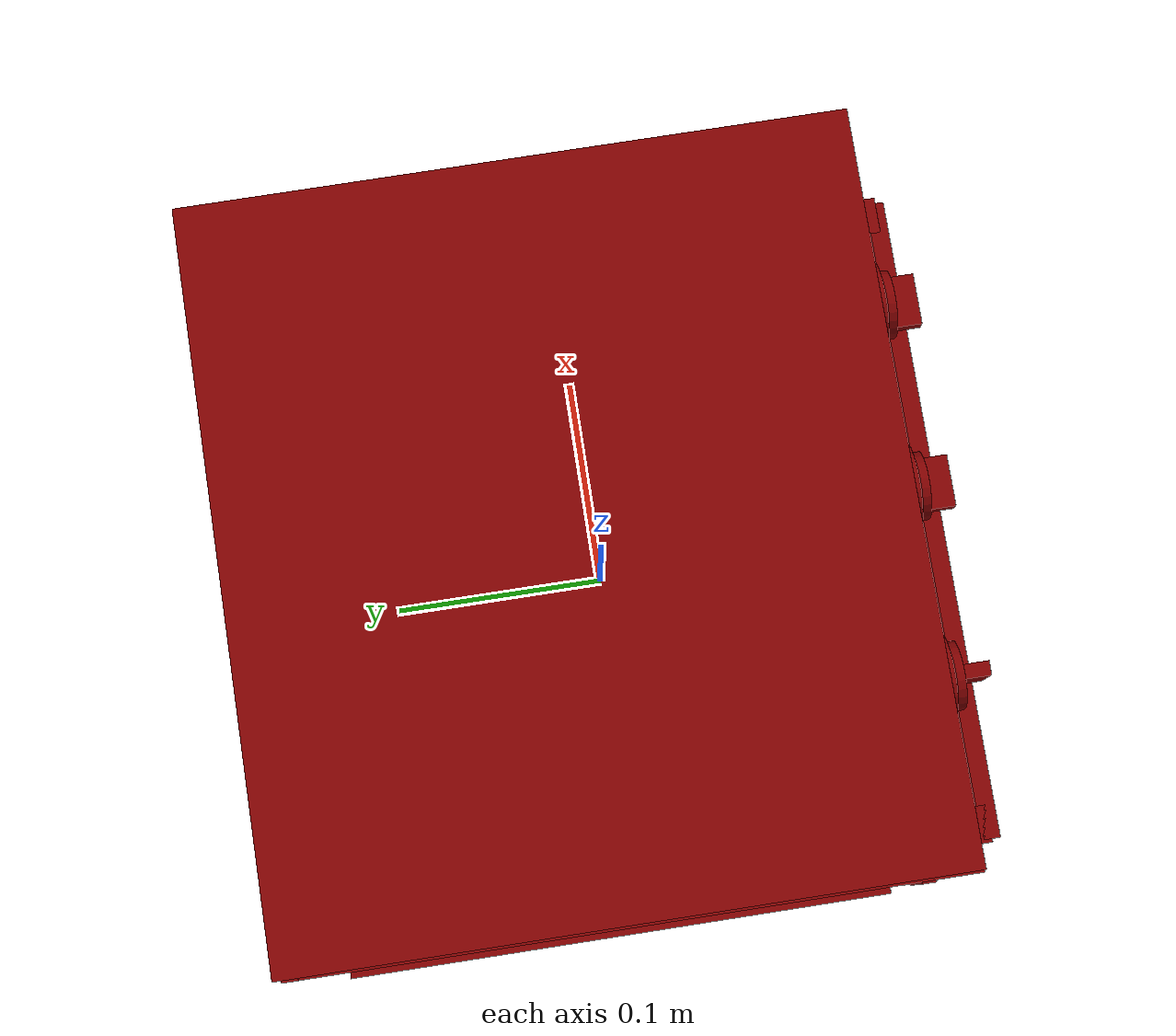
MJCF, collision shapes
<?xml version='1.0' encoding='UTF-8'?>
<mujoco model="model">
  <option timestep="0.002" gravity="0.0 0.0 -9.81"/>
  <compiler angle="radian"/>
  <asset>
    <mesh file="visuals/door.obj" name="door_vis"/>
    <mesh file="visuals/knob_function.obj" name="knob_function_vis"/>
    <mesh file="visuals/knob_temp.obj" name="knob_temp_vis"/>
    <mesh file="visuals/knob_time.obj" name="knob_time_vis"/>
    <mesh file="visuals/rack0.obj" name="rack0_vis"/>
    <mesh file="visuals/Body001.obj" name="Body001_vis"/>
    <mesh file="visuals/window.obj" name="window_vis"/>
    <texture file="visuals/T_BC001.png" name="Body001_material" type="2d"/>
    <material name="Body001_material" rgba="1 1 1 1.0" texture="Body001_material" shininess="0.4472135901451111" specular="0.5"/>
    <texture file="visuals/T_BC001.png" name="door_material" type="2d"/>
    <material name="door_material" rgba="1 1 1 1.0" texture="door_material" shininess="0.4472135901451111" specular="0.5"/>
    <texture file="visuals/T_BC001.png" name="window_material" type="2d"/>
    <material name="window_material" rgba="1 1 1 0.699999988079071" texture="window_material" shininess="0.4472135901451111" specular="0.3103448502657381"/>
    <texture file="visuals/T_BC001.png" name="knob_function_material" type="2d"/>
    <material name="knob_function_material" rgba="1 1 1 1.0" texture="knob_function_material" shininess="0.4472135901451111" specular="0.3103448502657381"/>
    <texture file="visuals/T_BC001.png" name="knob_temp_material" type="2d"/>
    <material name="knob_temp_material" rgba="1 1 1 1.0" texture="knob_temp_material" shininess="0.4472135901451111" specular="0.3103448502657381"/>
    <texture file="visuals/T_BC001.png" name="knob_time_material" type="2d"/>
    <material name="knob_time_material" rgba="1 1 1 1.0" texture="knob_time_material" shininess="0.4472135901451111" specular="0.3103448502657381"/>
    <texture file="visuals/T_BC001.png" name="rack0_material" type="2d"/>
    <material name="rack0_material" rgba="1 1 1 1.0" texture="rack0_material" shininess="0.4472135901451111" specular="5"/>
  </asset>
  <default>
    <default class="visual">
      <geom conaffinity="0" contype="0" group="1" type="mesh"/>
    </default>
    <default class="collision">
      <geom group="0" rgba="0.5 0 0 0.5"/>
    </default>
    <default class="spawn">
      <geom group="0" rgba="1 1 1 0.5" contype="0" conaffinity="0"/>
      <site group="0" rgba="1 1 1 0.5"/>
    </default>
    <default class="region">
      <geom group="1" conaffinity="0" contype="0" rgba="0 1 0 0"/>
    </default>
  </default>
  <worldbody>
    <body>
      <body name="object">
        <geom mesh="Body001_vis" type="mesh" solimp="0.998 0.998 0.001" solref="0.001 1" friction="0.95 0.3 0.1" class="visual" material="Body001_material"/>
        <geom class="collision" type="box" pos="0.00000001 0.01395867 0.13722664" size="0.16653408110141754 0.14829392731189728 0.008340146392583847" quat="1.0 0.0 0.0 0.0"/>
        <geom class="collision" type="box" pos="-0.00010846 0.14972858 0.00302863" size="0.16761218011379242 0.011209108866751194 0.1259416937828064" quat="1.0 0.0 0.0 0.0"/>
        <geom class="collision" type="box" pos="0.15409395 0.02114023 0.00302863" size="0.011853432282805443 0.13833630084991455 0.12594158947467804" quat="1.0 0.0 0.0 0.0"/>
        <geom class="collision" type="box" pos="0.00000001 0.01564514 -0.12723973" size="0.1734510064125061 0.14529235661029816 0.019681619480252266" quat="1.0 0.0 0.0 0.0"/>
        <geom class="collision" type="box" pos="-0.15555565 0.02114023 0.00302863" size="0.011853435076773167 0.13833612203598022 0.12594160437583923" quat="1.0 0.0 0.0 0.0"/>
        <geom class="collision" type="box" pos="-0.00010846 0.00859753 0.09140291" size="0.16761206090450287 0.1453414410352707 0.03759494423866272" quat="1.0 0.0 0.0 0.0"/>
        <geom class="collision" type="box" pos="0.14087208 0.02685322 -0.06324681" size="0.003596869297325611 0.11740750074386597 0.004171628504991531" quat="1.0 0.0 0.0 0.0"/>
        <geom class="collision" type="box" pos="-0.14181207 0.02685322 -0.06325661" size="0.003517383011057973 0.11740759760141373 0.004161827731877565" quat="1.0 0.0 0.0 0.0"/>
        <geom class="collision" type="cylinder" pos="-0.08106472 -0.13809383 0.09302124" size="0.02089783176779747 0.004233737476170063" quat="0.7071068286895752 0.7071067690849304 -1.5700924318127872e-16 -5.9269340452702814e-24"/>
        <geom class="collision" type="cylinder" pos="0.00571214 -0.13809383 0.09302124" size="0.02089783176779747 0.004233737476170063" quat="0.7071068286895752 0.7071067690849304 -1.5700924318127872e-16 -5.9269340452702814e-24"/>
        <geom class="collision" type="cylinder" pos="0.09096079 -0.13809383 0.09302124" size="0.02089783176779747 0.004233737476170063" quat="0.7071068286895752 0.7071067690849304 -1.5700924318127872e-16 -5.9269340452702814e-24"/>
        <body name="door">
          <joint axis="1.0 0.0 0.0" pos="0.00002564 -0.13156428 -0.10971327" limited="true" name="door_joint" range="0.0 1.5707963267948966" type="hinge" damping="1" frictionloss="1" armature=".01" stiffness="0.05"/>
          <geom mesh="door_vis" type="mesh" solimp="0.998 0.998 0.001" solref="0.001 1" friction="0.95 0.3 0.1" class="visual" material="door_material"/>
          <geom class="collision" type="box" pos="0.00000001 -0.12524064 0.03362763" size="0.16949212551116943 0.003355389926582575 0.01801559142768383" quat="1.0 0.0 0.0 0.0"/>
          <geom class="collision" type="box" pos="0.00000001 -0.12524066 -0.09287358" size="0.16949091851711273 0.0033553296234458685 0.009288998320698738" quat="1.0 0.0 0.0 0.0"/>
          <geom class="collision" type="box" pos="-0.14890295 -0.12544254 -0.03316992" size="0.02024683728814125 0.003153531113639474 0.056254416704177856" quat="1.0 0.0 0.0 0.0"/>
          <geom class="collision" type="box" pos="0.14848639 -0.12544249 -0.03316992" size="0.02024683728814125 0.003153471741825342 0.056254416704177856" quat="1.0 0.0 0.0 0.0"/>
          <geom class="collision" type="box" pos="-0.00014373 -0.15710833 0.03890631" size="0.15383702516555786 0.004316837526857853 0.01130091492086649" quat="1.0 0.0 0.0 0.0" name="door_handle_main"/>
          <geom class="collision" type="box" pos="-0.14694047 -0.14315115 0.03890631" size="0.00863552838563919 0.014380968175828457 0.011300891637802124" quat="1.0 0.0 0.0 0.0"/>
          <geom class="collision" type="box" pos="0.14779183 -0.14315115 0.03890631" size="0.00863552838563919 0.014380976557731628 0.011300895363092422" quat="1.0 0.0 0.0 0.0"/>
          <geom class="collision" type="box" pos="-0.00066411 -0.12720917 -0.02581070" size="0.1664639711380005 0.001386867486871779 0.07558072358369827" quat="1.0 0.0 0.0 0.0" name="door_main"/>
          <body name="window">
            <geom mesh="window_vis" type="mesh" solimp="0.998 0.998 0.001" solref="0.001 1" friction="0.95 0.3 0.1" class="visual" material="window_material"/>
            <geom class="collision" type="box" pos="0.00000001 -0.12582230 -0.03365599" size="0.13484245538711548 1.6315637729746868e-09 0.05507325753569603" quat="1.0 0.0 0.0 0.0"/>
          </body>
        </body>
        <body name="knob_function">
          <joint axis="0.0 1.0 0.0" pos="0.09105236 -0.14906104 0.09312472" limited="true" name="knob_function_joint" range="0.0 3.141592653589793" type="hinge" damping="0.05" frictionloss="0.75" armature="1"/>
          <geom mesh="knob_function_vis" type="mesh" solimp="0.998 0.998 0.001" solref="0.001 1" friction="0.95 0.3 0.1" class="visual" material="knob_function_material"/>
          <geom class="collision" type="cylinder" pos="0.09106537 -0.14565497 0.09303001" size="0.01555428747087717 0.0019404644845053554" quat="0.7071068286895752 0.7071067690849304 0.0 0.0" friction="100 0.5 0.01"/>
          <geom class="collision" type="box" pos="0.09103889 -0.15326824 0.09290083" size="0.011869915761053562 0.006524231750518084 0.003251135116443038" quat="1.0 0.0 0.0 0.0" name="knob_function_main" friction="100 0.5 0.01"/>
        </body>
        <body name="knob_temp">
          <joint axis="0.0 1.0 0.0" pos="0.00576608 -0.14906104 0.09312472" limited="true" name="knob_temp_joint" range="0.0 3.6651914291880923" type="hinge" damping="0.05" frictionloss="0.75" armature="1"/>
          <geom mesh="knob_temp_vis" type="mesh" solimp="0.998 0.998 0.001" solref="0.001 1" friction="0.95 0.3 0.1" class="visual" material="knob_temp_material"/>
          <geom class="collision" type="cylinder" pos="0.00572881 -0.14565497 0.09303001" size="0.01555428747087717 0.0019404644845053554" quat="0.7071068286895752 0.7071067690849304 0.0 0.0" friction="100 0.5 0.01"/>
          <geom class="collision" type="box" pos="0.00576549 -0.15326824 0.09290083" size="0.011869923211634159 0.006524231750518084 0.003251137677580118" quat="1.0 0.0 0.0 0.0" name="knob_temp_main" friction="100 0.5 0.01"/>
        </body>
        <body name="knob_time">
          <joint axis="0.0 1.0 0.0" pos="-0.08106466 -0.14906104 0.09312472" limited="true" name="knob_time_joint" range="0.0 4.014257279586958" type="hinge" damping="0.05" frictionloss="0.75" armature="1"/>
          <geom mesh="knob_time_vis" type="mesh" solimp="0.998 0.998 0.001" solref="0.001 1" friction="0.95 0.3 0.1" class="visual" material="knob_time_material"/>
          <geom class="collision" type="cylinder" pos="-0.08108310 -0.14565497 0.09303001" size="0.01555428747087717 0.0019404644845053554" quat="0.7071068286895752 0.7071067690849304 0.0 0.0" friction="100 0.5 0.01"/>
          <geom class="collision" type="box" pos="-0.08103980 -0.15326824 0.09290083" size="0.0032511423341929913 0.006524230353534222 0.011869920417666435" quat="1.0 0.0 0.0 0.0" name="knob_time_main" friction="100 0.5 0.01"/>
        </body>
        <body name="rack0">
          <geom class="region" name="reg_rack0" type="box" pos="-0.0014942650000000085 0.008517509999999999 -0.0022720250000000004" size="0.13602151499999998 0.09765636 0.054022455"/>
          <joint axis="0.0 -1.0 0.0" pos="-0.00225272 0.00842404 -0.05779688" limited="true" name="rack0_joint" range="0.0 0.17" type="slide" damping="1" frictionloss="1" armature=".01" stiffness="0.05"/>
          <geom mesh="rack0_vis" type="mesh" solimp="0.998 0.998 0.001" solref="0.001 1" friction="0.95 0.3 0.1" class="visual" material="rack0_material"/>
          <geom class="collision" type="box" pos="-0.00138306 0.00843478 -0.05781148" size="0.14138704538345337 0.10391226410865784 0.0012173259165138006" quat="1.0 0.0 0.0 0.0"/>
        </body>
        <geom class="region" name="reg_main" type="box" pos="-4.999999997368221e-09 0.008809509999999993 0.0" size="0.174774395 0.15327483 0.14829048"/>
      </body>
    </body>
  </worldbody>
  <actuator>
    <motor name="door_joint_actuator" joint="door_joint" gear="50"/>
    <motor name="knob_function_joint_actuator" joint="knob_function_joint" gear="50"/>
    <motor name="knob_temp_joint_actuator" joint="knob_temp_joint" gear="50"/>
    <motor name="knob_time_joint_actuator" joint="knob_time_joint" gear="50"/>
    <motor name="rack0_joint_actuator" joint="rack0_joint" gear="50"/>
  </actuator>
</mujoco>
